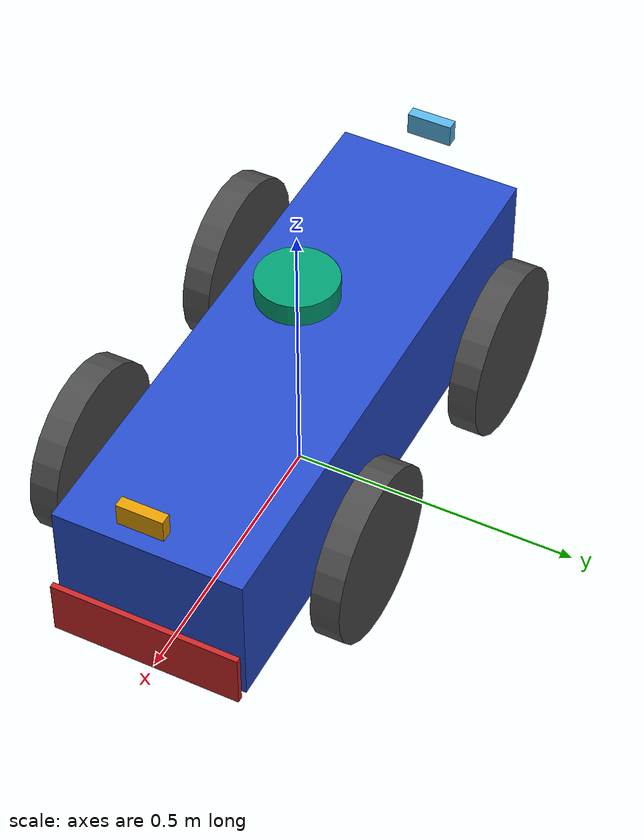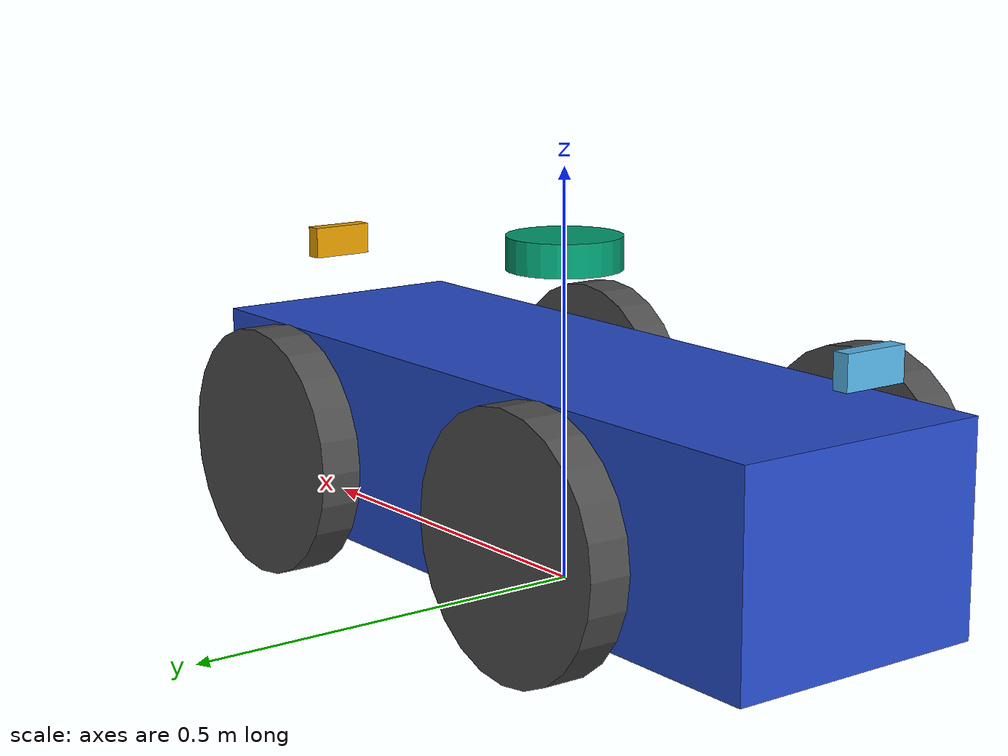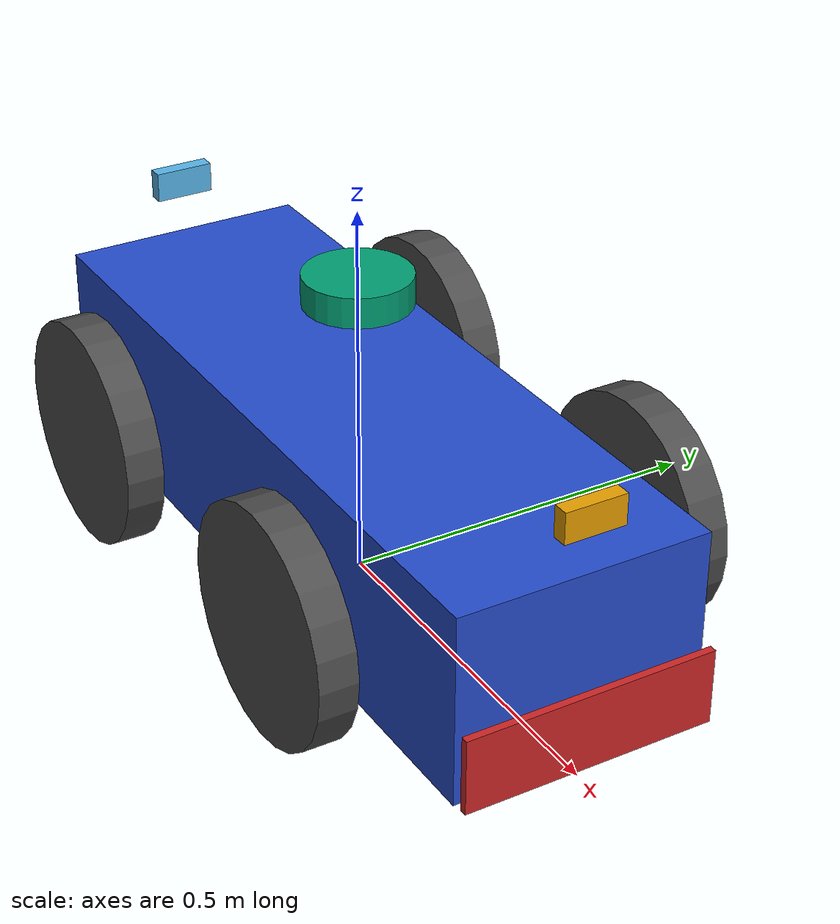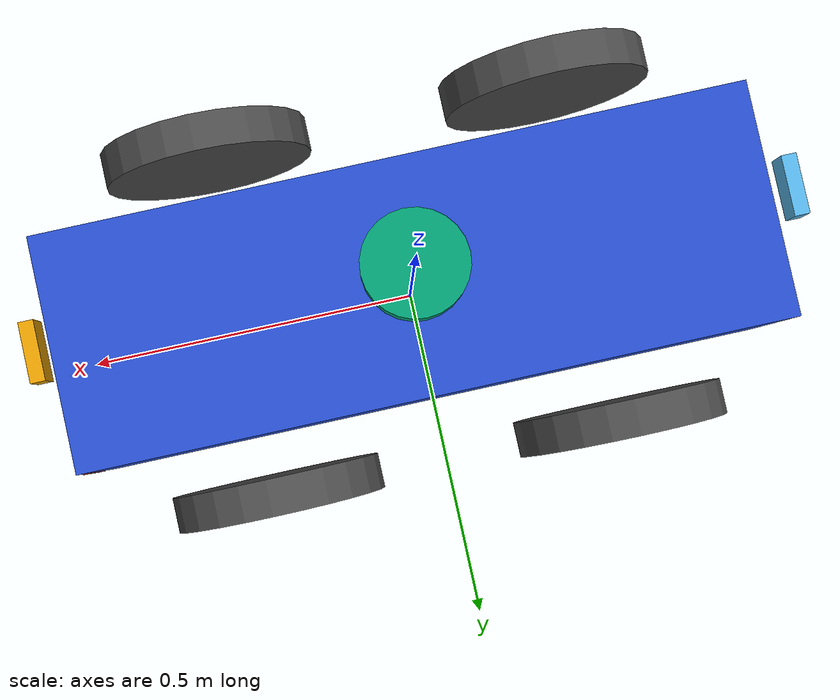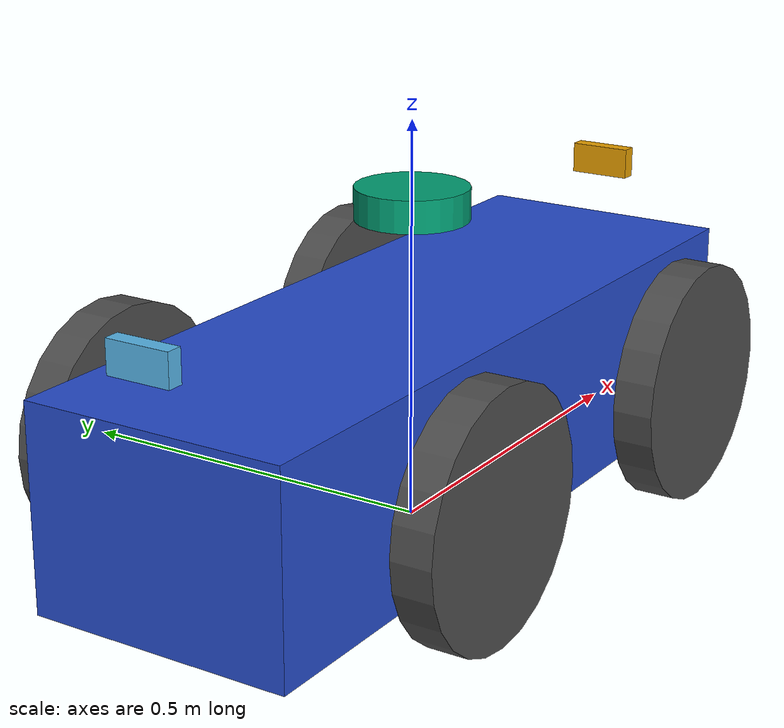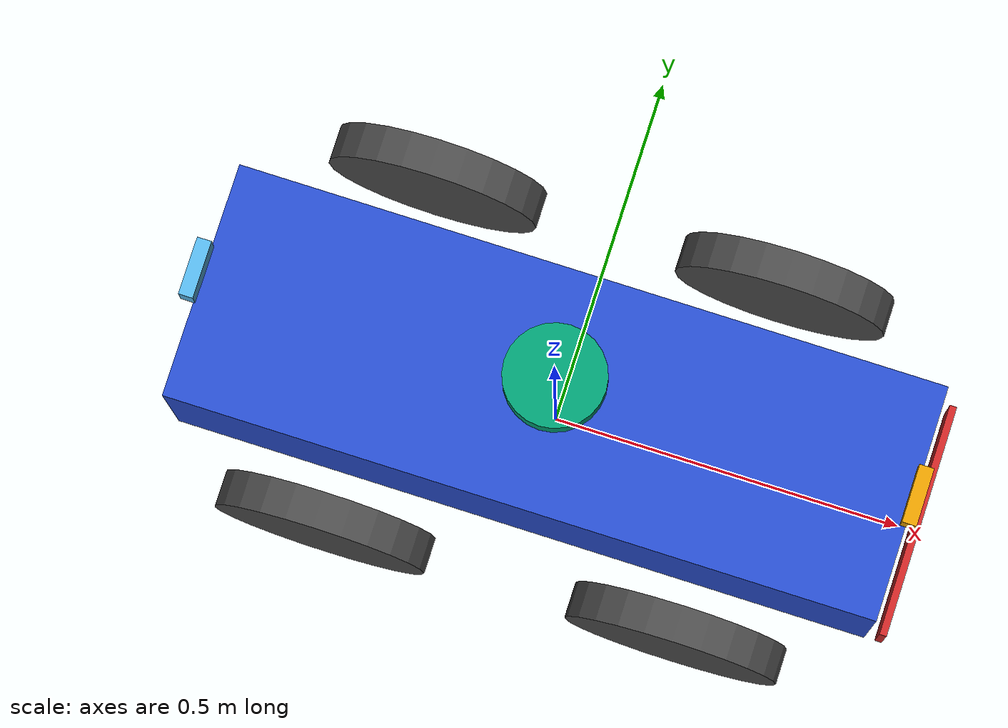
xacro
<?xml version="1.0"?>
<robot xmlns:xacro="http://www.ros.org/wiki/xacro" name="leo">

  <xacro:include filename="$(find tennis-description)/urdf/leo.gazebo.xacro" />
  <xacro:include filename="$(find tennis-description)/urdf/transmission.xacro" />
  <xacro:include filename="$(find tennis-description)/urdf/camera.xacro" />
  <xacro:include filename="$(find tennis-description)/urdf/rplidar.xacro" />

  <xacro:property name="robotlxx" value="0.385" />
  <xacro:property name="robotlxy" value="0" />
  <xacro:property name="robotlxz" value="0" />
  <xacro:property name="robotlyy" value="1.92098166" />
  <xacro:property name="robotlyz" value="0" />
  <xacro:property name="robotlzz" value="1.844169" />

  <link name="base">
    <visual>
      <origin xyz="0.0 0.0 0.0" rpy="0.0 0.0 0.0" />
      <geometry>
        <box size="1 0.33 0.25" />
      </geometry>
    </visual>
    <collision>
      <origin xyz="0.0 0.0 0.0" rpy="0.0 0.0 0.0" />
      <geometry>
        <box size="1 0.33 0.25" />
      </geometry>
    </collision>
    <inertial>
      <mass value="30" />
      <inertia ixx="${robotlxx}" ixy="${robotlxy}" ixz="${robotlxz}" iyy="${robotlyy}" iyz="${robotlyz}" izz="${robotlzz}" />
    </inertial>
  </link>

  <xacro:macro name="cylinder_inertia" params="m r h">
    <inertia ixx="${m*(3*r*r+h*h)/12}" ixy="0" ixz="0" iyy="${m*(3*r*r+h*h)/12}" iyz="0" izz="${m*r*r/2}" />
  </xacro:macro>

  <xacro:macro name="wheel" params="side reflect_x reflect_y">
    <link name="${side}_wheel_link">
      <visual>
        <origin xyz=" 0 0 0" rpy="${pi/2} 0 0" />
        <geometry>
          <cylinder radius="0.15" length="0.05" />
        </geometry>
      </visual>
      <collision>
        <origin xyz=" 0 0 0" rpy="${pi/2} 0 0" />
        <geometry>
          <cylinder radius="0.15" length="0.05" />
        </geometry>
      </collision>
      <inertial>
        <origin xyz="0 0 0" rpy="${pi/2} 0 0" />
        <mass value="3" />
        <xacro:cylinder_inertia m="3" r="0.15" h="0.05" />
      </inertial>

    </link>

    <joint name="${side}_wheel_joint" type="continuous">
      <parent link="base" />
      <child link="${side}_wheel_link" />
      <origin xyz="${reflect_x * 0.25} ${reflect_y * 0.25} 0" />
      <axis xyz="0 1 0" />
      <dynamics damping="0.8" friction="100.0" />
    </joint>

    <xacro:wheel_gazebo prefix="${side}" />
    <xacro:wheel_transmission prefix="${side}" />
  </xacro:macro>

  <xacro:wheel side="left_front" reflect_x="1" reflect_y="1" />
  <xacro:wheel side="left_back" reflect_x="-1" reflect_y="1" />
  <xacro:wheel side="right_front" reflect_x="1" reflect_y="-1" />
  <xacro:wheel side="right_back" reflect_x="-1" reflect_y="-1" />

  <link name="imu_link" />
  <joint name="imu_joint" type="fixed">
    <parent link="base" />
    <child link="imu_link" />
    <origin xyz="0.0 0.0 0" rpy="0 0 0" />
  </joint>

  <link name="vacuum_link">
    <visual>
      <geometry>
        <box size="0.01 0.33 0.1" />
      </geometry>
    </visual>
    <collision>
      <geometry>
        <box size="0.01 0.33 0.1" />
      </geometry>
    </collision>
  </link>
  <joint name="vacuum_joint" type="fixed">
    <origin xyz="0.52 0 -0.07" />
    <parent link="base" />
    <child link="vacuum_link" />
  </joint>

  <!-- Create a root link with no inertia to make the solver happy and raise the robot above the floor -->
  <link name="base_root">
  </link>

  <!-- Connect that link to the base link in middle of the robot -->
  <joint name="base_root_joint" type="fixed">
    <origin xyz="0 0 0.15" rpy="0 0 0" />
    <parent link="base_root" />
    <child link="base" />
  </joint>

  <!-- camera definitions -->
  <xacro:camera name="front_camera" parent="base" xyz="0.5 0 0.2" rpy="0 0 0" />
  <xacro:camera name="rear_camera" parent="base" xyz="-0.5 0 0.2" rpy="0 0 ${pi}" />

  <!-- lidar definition -->
  <xacro:rplidar name="lidar" parent="base" xyz="0 0 0.25" rpy="0 0 0" />

  <!-- old lidar stuff -->

</robot>

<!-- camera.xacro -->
<robot xmlns:xacro="http://www.ros.org/wiki/xacro" name="robot">

  <xacro:property name="camera_geometry">
    <geometry>
      <box size="0.02 0.08 0.04" />
    </geometry>
  </xacro:property>

  <xacro:macro name="camera" params="name parent xyz rpy">
    <link name="${name}_link">
      <visual>
        <xacro:insert_block name="camera_geometry" />
      </visual>
      <collision>
        <xacro:insert_block name="camera_geometry" />
      </collision>
      <inertial>
        <mass value="0.1" />
        <origin xyz="0 0 0" rpy="0 0 0" />
        <inertia ixx="1e-6" ixy="0" ixz="0" iyy="1e-6" iyz="0" izz="1e-6" />
      </inertial>
    </link>

    <joint name="${name}_joint" type="fixed">
      <origin xyz="${xyz}" rpy="${rpy}" />
      <parent link="${parent}" />
      <child link="${name}_link" />
    </joint>

    <gazebo reference="${name}_link">
      <sensor type="camera" name="${name}">
        <update_rate>30.0</update_rate>
        <camera name="${name}">
          <horizontal_fov>1.3962634</horizontal_fov>
          <image>
            <width>1280</width>
            <height>720</height>
            <format>R8G8B8</format>
          </image>
          <clip>
            <near>0.02</near>
            <far>300</far>
          </clip>
          <noise>
            <type>gaussian</type>
            <!-- Noise is sampled independently per pixel on each frame.
               That pixel's noise value is added to each of its color
               channels, which at that point lie in the range [0,1]. -->
            <mean>0.0</mean>
            <stddev>0.007</stddev>
          </noise>
        </camera>
        <plugin name="camera_controller" filename="libgazebo_ros_camera.so">
          <alwaysOn>true</alwaysOn>
          <update_rate>0</update_rate>
          <cameraName>/leo/${name}</cameraName>
          <imageTopicName>image_raw</imageTopicName>
          <cameraInfoTopicName>camera_info</cameraInfoTopicName>
          <frameName>${name}_link</frameName>
          <hackBaseline>0.07</hackBaseline>
          <distortionK1>0.0</distortionK1>
          <distortionK2>0.0</distortionK2>
          <distortionK3>0.0</distortionK3>
          <distortionT1>0.0</distortionT1>
          <distortionT2>0.0</distortionT2>
        </plugin>
      </sensor>
    </gazebo>

  </xacro:macro>

</robot>

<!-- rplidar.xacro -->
<robot xmlns:xacro="http://www.ros.org/wiki/xacro" name="robot">

  <xacro:property name="rplidar_r" value="0.07" />
  <xacro:property name="rplidar_h" value="0.04" />
  <xacro:property name="rplidar_mass" value="0.190" />

  <xacro:property name="rplidar_geometry">
    <origin xyz="0 0 0" rpy="0 0 0 " />
    <geometry>
      <cylinder radius="${rplidar_r}" length="${rplidar_h}" />
    </geometry>
  </xacro:property>

  <xacro:macro name="rplidar" params="name parent xyz rpy">

    <link name="${name}_link">
      <visual>
        <xacro:insert_block name="rplidar_geometry" />
      </visual>
      <collision>
        <xacro:insert_block name="rplidar_geometry" />
      </collision>
      <inertial>
        <origin xyz="0 0 0" rpy="0 0 0" />
        <xacro:cylinder_inertia m="${rplidar_mass}" r="${rplidar_r}" h="${rplidar_h}" />
        <mass value="${rplidar_mass}" />
      </inertial>
    </link>

    <joint name="${name}_joint" type="fixed">
      <origin xyz="${xyz}" rpy="${rpy}" />
      <parent link="${parent}" />
      <child link="${name}_link" />
    </joint>

    <gazebo reference="${name}_link">
      <sensor type="ray" name="${name}">
        <pose>0 0 0 0 0 0</pose>
        <visualize>false</visualize>
        <update_rate>10</update_rate>
        <always_on>true</always_on>
        <ray>
          <scan>
            <horizontal>
              <samples>800</samples>
              <resolution>0.45</resolution>
              <min_angle>-3.14159</min_angle>
              <max_angle>3.14159</max_angle>
            </horizontal>
          </scan>
          <range>
            <min>0.20</min>
            <max>12.0</max>
            <resolution>0.01</resolution>
          </range>
          <noise>
            <type>gaussian</type>
            <mean>0.0</mean>
            <stddev>0.01</stddev>
          </noise>
        </ray>
        <plugin name="gazebo_lidar" filename="libgazebo_ros_laser.so">
          <topicName>/leo/${name}/scan</topicName>
          <frameName>${name}_link</frameName>
        </plugin>
      </sensor>

    </gazebo>

  </xacro:macro>

</robot>
